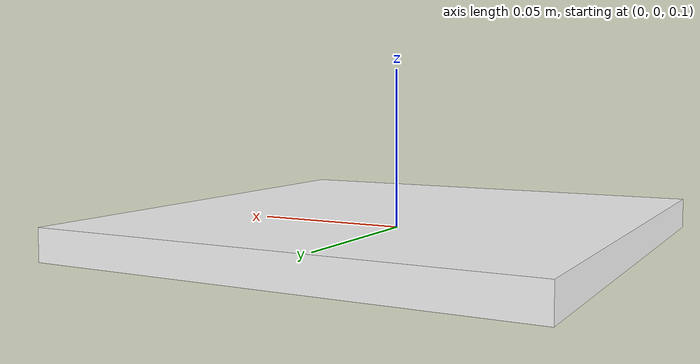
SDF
<?xml version="1.0" ?>
<sdf version="1.9">
  <model name="aruco_marker">
    <static>true</static>
    <link name="aruco_marker">
      <pose>0 0 0.1 0 0 0</pose>
      <visual name="visual">
        <geometry>
          <box>
            <size>0.15 0.15 0.01</size>
          </box>
        </geometry>
        <material>
          <diffuse>1 1 1 1</diffuse>
          <specular>0 0 0 1</specular>
          <pbr>
            <metal>
              <albedo_map>file://aruco_marker/materials/textures/aruco_marker.png</albedo_map>
            </metal>
          </pbr>
        </material>
        <cast_shadows>false</cast_shadows>
      </visual>
      <collision name="collision">
        <geometry>
          <box>
            <size>0.15 0.15 0.01</size>
          </box>
        </geometry>
      </collision>
    </link>
  </model>
</sdf>
